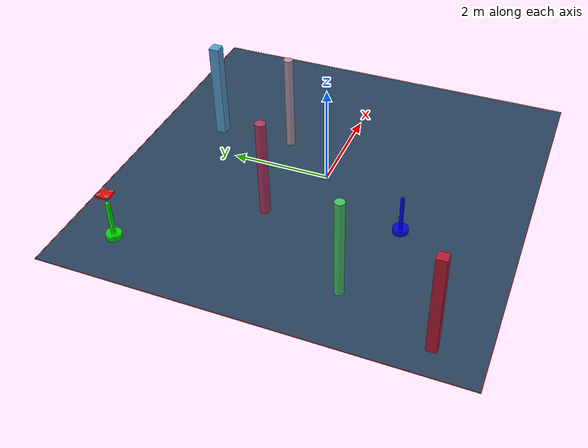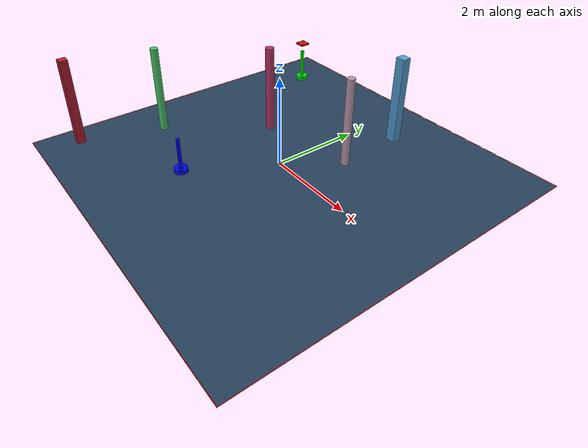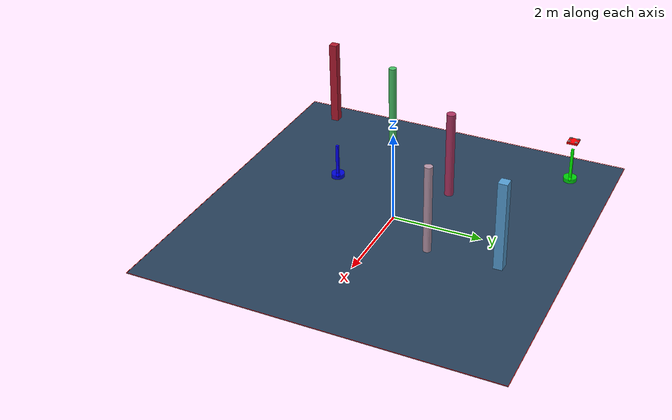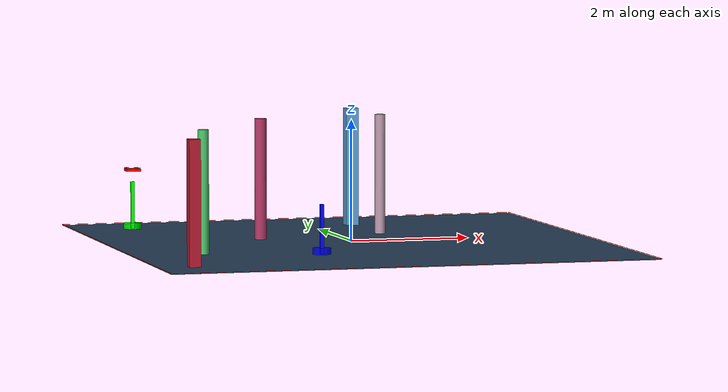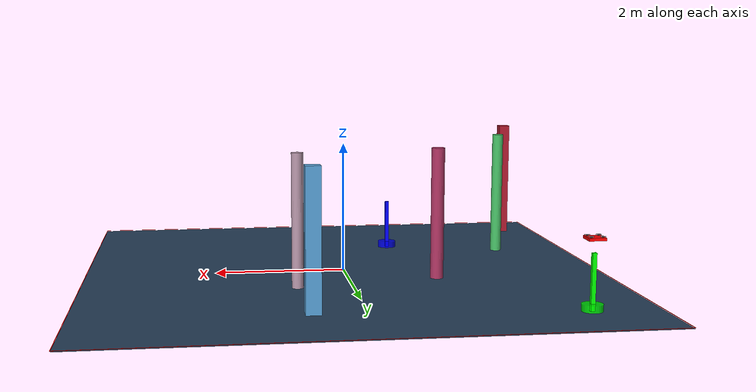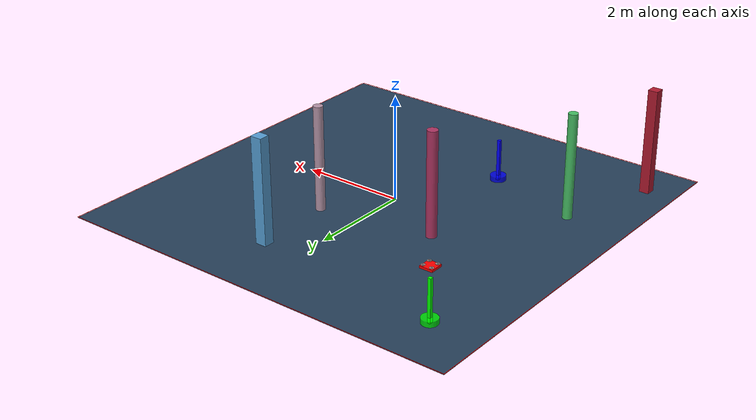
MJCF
<?xml version='1.0' encoding='utf-8'?>
<mujoco model="complex_uav_env">
  <compiler angle="degree" coordinate="local" inertiafromgeom="true" />
  <option integrator="RK4" timestep="0.01" />

  <visual>
    <headlight diffuse="0.6 0.6 0.6" ambient="0.3 0.3 0.3" />
    <rgba haze="0.15 0.25 0.35 1" />
    <global offwidth="2560" offheight="1440" />
  </visual>

  <asset>
    <texture type="skybox" builtin="gradient" rgb1="0.3 0.5 0.7" rgb2="0 0 0" width="512" height="3072" />
    <texture name="grid" type="2d" builtin="checker" rgb1="0.1 0.2 0.3" rgb2="0.2 0.3 0.4" width="512" height="512" />
    <material name="grid" texture="grid" texrepeat="1 1" />
  </asset>

  <worldbody>

    <geom name="ground" type="plane" size="4.0 4.0 0.1" material="grid" />
    <light name="light1" pos="0 0 4" dir="0 0 -1" diffuse="1 1 1" />

    <geom name="start_marker" type="cylinder" size="0.15 0.05" pos="-3.0 3.0 0.05" rgba="0 1 0 0.8" />
    <geom name="start_pole" type="box" size="0.03 0.03 0.4" pos="-3.0 3.0 0.4" rgba="0 1 0 1" />

    <geom name="goal_marker" type="cylinder" size="0.15 0.05" pos="-1.0049247039258602 -1.825242490074423 0.05" rgba="0 0 1 0.8" />
    <geom name="goal_pole" type="box" size="0.03 0.03 0.4" pos="-1.0049247039258602 -1.825242490074423 0.4" rgba="0 0 1 1" />

    <body name="chassis" pos="-3.0 3.0 1.0">
      <joint type="free" name="root" />
      <geom type="box" size="0.12 0.12 0.02" rgba="1.0 0.0 0.0 1.0" mass="0.8" />

      <geom type="box" size="0.08 0.01 0.005" pos="0 0 0.01" rgba="0.3 0.3 0.3 1" />
      <geom type="box" size="0.01 0.08 0.005" pos="0 0 0.01" rgba="0.3 0.3 0.3 1" />

      <geom type="cylinder" size="0.015 0.02" pos="0.08 0.08 0.015" rgba="0.2 0.2 0.2 1" />
      <geom type="cylinder" size="0.015 0.02" pos="-0.08 0.08 0.015" rgba="0.2 0.2 0.2 1" />
      <geom type="cylinder" size="0.015 0.02" pos="0.08 -0.08 0.015" rgba="0.2 0.2 0.2 1" />
      <geom type="cylinder" size="0.015 0.02" pos="-0.08 -0.08 0.015" rgba="0.2 0.2 0.2 1" />

      <geom type="cylinder" size="0.04 0.002" pos="0.08 0.08 0.035" rgba="0.7 0.7 0.7 0.8" />
      <geom type="cylinder" size="0.04 0.002" pos="-0.08 0.08 0.035" rgba="0.7 0.7 0.7 0.8" />
      <geom type="cylinder" size="0.04 0.002" pos="0.08 -0.08 0.035" rgba="0.7 0.7 0.7 0.8" />
      <geom type="cylinder" size="0.04 0.002" pos="-0.08 -0.08 0.035" rgba="0.7 0.7 0.7 0.8" />

      <site name="motor1" pos="0.08 0.08 0" size="0.01" />
      <site name="motor2" pos="-0.08 0.08 0" size="0.01" />
      <site name="motor3" pos="0.08 -0.08 0" size="0.01" />
      <site name="motor4" pos="-0.08 -0.08 0" size="0.01" />
    </body>
    <geom name="test_obs_0" type="cylinder" size="0.09996767420857292 1.0" pos="-1.3495710503332359 0.7344685617506093 1.0" rgba="0.6777999744743621 0.20330606026013065 0.38262017730804276 1.0" />
    <geom name="test_obs_1" type="cylinder" size="0.0889923768204168 1.0" pos="-2.826865176523464 -1.2953503014957444 1.0" rgba="0.27997926025724373 0.7493875286389498 0.39747446637855466 1.0" />
    <geom name="test_obs_2" type="box" size="0.10830232820786158 0.10031580588508927 1.0" pos="0.7500836752837439 2.668388056707378 1.0" rgba="0.33354599619676417 0.6204798865566836 0.829914353871651 1.0" />
    <geom name="test_obs_3" type="box" size="0.09173609237489708 0.09233114356681318 1.0" pos="-3.4226929197888922 -3.089633599977438 1.0" rgba="0.6893292053442798 0.102114249391005 0.1855134649538971 1.0" />
    <geom name="test_obs_4" type="cylinder" size="0.08838023803884651 1.0" pos="0.8196879317076655 1.1262923246504588 1.0" rgba="0.7094593095778458 0.581972899293571 0.6567430486289882 1.0" />
  <geom name="boundary_north" type="box" size="4.0 0.005 0.002" pos="0 4.0 0.002" rgba="1.0 0.0 0.0 1.0" /><geom name="boundary_south" type="box" size="4.0 0.005 0.002" pos="0 -4.0 0.002" rgba="1.0 0.0 0.0 1.0" /><geom name="boundary_east" type="box" size="0.005 4.0 0.002" pos="4.0 0 0.002" rgba="1.0 0.0 0.0 1.0" /><geom name="boundary_west" type="box" size="0.005 4.0 0.002" pos="-4.0 0 0.002" rgba="1.0 0.0 0.0 1.0" /></worldbody>

  <actuator>
    <motor name="m1" gear="0 0 1 0 0 0" site="motor1" />
    <motor name="m2" gear="0 0 1 0 0 0" site="motor2" />
    <motor name="m3" gear="0 0 1 0 0 0" site="motor3" />
    <motor name="m4" gear="0 0 1 0 0 0" site="motor4" />
  </actuator>
</mujoco>
